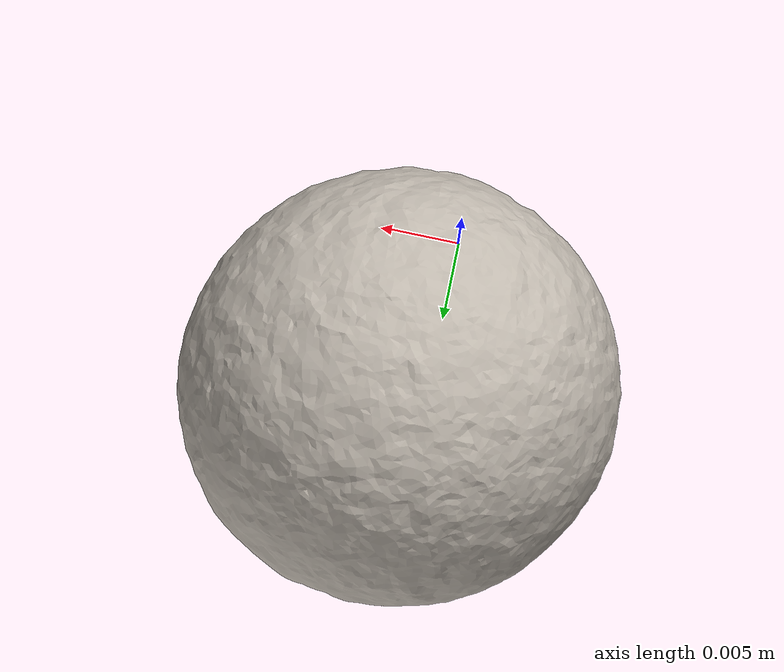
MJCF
<mujoco model="bread">
  <asset>
    <mesh file="nontextured.stl" name="obj_mesh" scale="0.8 0.8 0.8"/>
    <texture file="../../../../../textures/bread.png" type="2d" name="tex-bread" />
    <material name="bread" reflectance="0.7" texrepeat="15 15" texture="tex-bread" texuniform="true"/>
  </asset>
  <worldbody>
    <body>
      <body name="collision">
        <geom pos="0.009138 0.045161 -0.016955" mesh="obj_mesh" type="mesh" solimp="0.998 0.998 0.001" solref="0.001 1" density="50" friction="0.95 0.3 0.1"  material="bread" group="1" condim="4"/>
      </body>
      <body name="visual">
        <geom pos="0.009138 0.045161 -0.016955" mesh="obj_mesh" type="mesh" material="bread"  conaffinity="0" contype="0"  group="0" mass="0.0001"/>
        <geom pos="0.009138 0.045161 -0.016955" mesh="obj_mesh" type="mesh" material="bread"  conaffinity="0" contype="0"  group="1" mass="0.0001"/>
      </body>
      <site rgba="0 0 0 0" size="0.005" pos="0 0 -0.017244" name="bottom_site"/>
      <site rgba="0 0 0 0" size="0.005" pos="0 0 0.017244" name="top_site"/>
      <site rgba="0 0 0 0" size="0.005" pos="0.017506999999999998 0.017515999999999997 0.017244" name="horizontal_radius_site"/>
    </body>
  </worldbody>
</mujoco>
